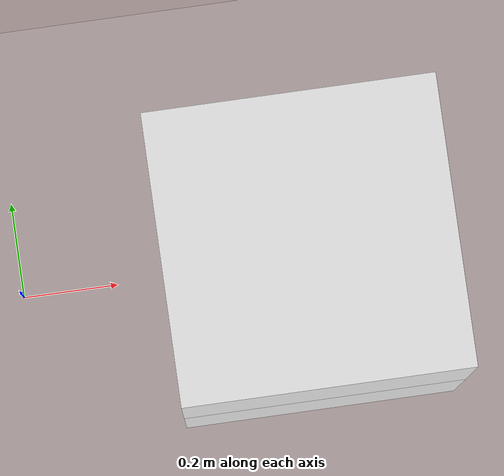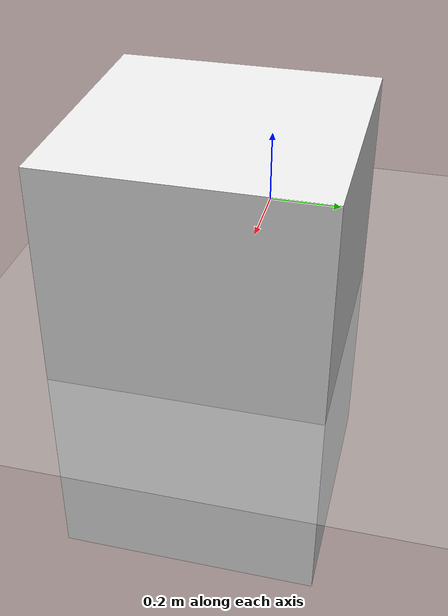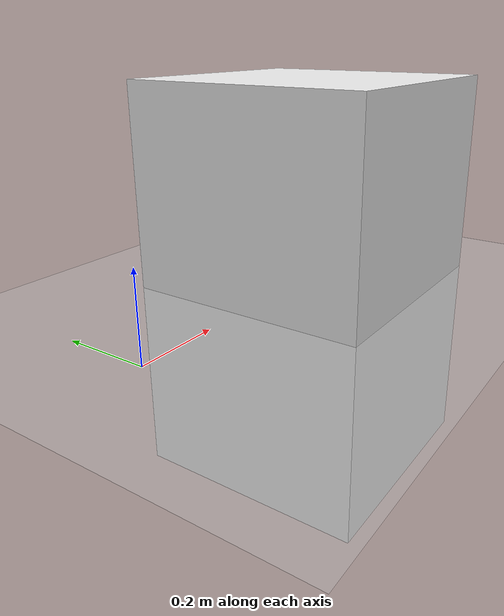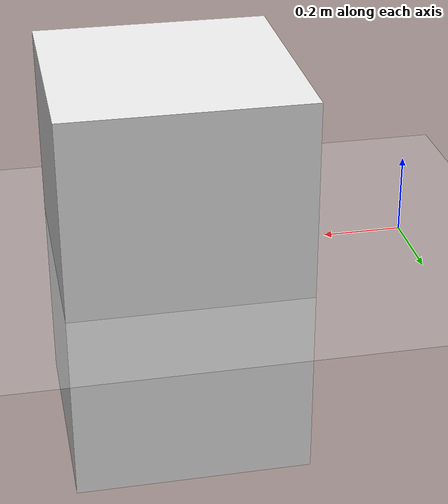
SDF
<?xml version="1.0" encoding="UTF-8" ?>
<sdf version="1.4">
  <world name="default">
    <!-- A global light source -->
    <include>
      <uri>model://sun</uri>
    </include>
    <!-- A ground plane -->
    <include>
      <uri>model://ground_plane</uri>
    </include>
    <!-- Our table. -->
    <model name='table'>
      <link name='main'>
        <pose>0 0 0 0 -0 0</pose>
          <collision name='collision'>
          <geometry>
            <box>
              <size>0.6 0.6 1</size>
            </box>
          </geometry>
          <max_contacts>10</max_contacts>
          <surface>
            <contact>
              <ode/>
            </contact>
            <bounce/>
            <friction>
              <ode>
                <mu>1</mu>
                <mu2>1</mu2>
              </ode>
            </friction>
          </surface>
        </collision>
        <visual name='visual'>
          <geometry>
            <box>
              <size>0.6 0.6 1</size>
            </box>
          </geometry>
          <material>
            <script>
              <uri>file://media/materials/scripts/gazebo.material</uri>
              <name>Gazebo/White</name>
            </script>
          </material>
        </visual>
        <self_collide>0</self_collide>
        <enable_wind>0</enable_wind>
        <kinematic>0</kinematic>
      </link>
      <static>1</static>
      <pose>0.6 0 0.0 0 0 0</pose>
    </model>

    <!-- cocke -->

    <!-- Physics -->
    <physics type="ode">
      <gravity>0 0 -9.81</gravity>
      <ode>
        <solver>
          <type>quick</type>
          <iters>10</iters>
          <sor>1.3</sor>
        </solver>
        <constraints>
          <cfm>0.0</cfm>
          <erp>0.2</erp>
          <contact_max_correcting_vel>10</contact_max_correcting_vel>
          <contact_surface_layer>0.001</contact_surface_layer>
        </constraints>
      </ode>
      <max_step_size>0.001</max_step_size>
    </physics>
  </world>
</sdf>
